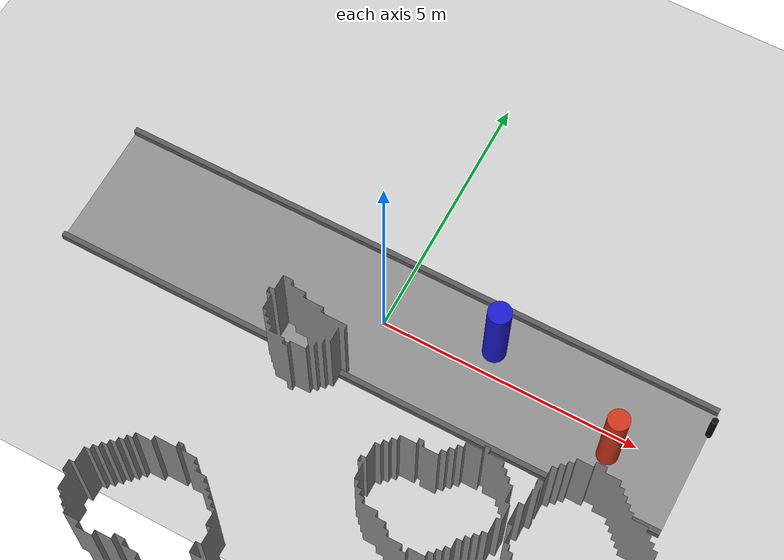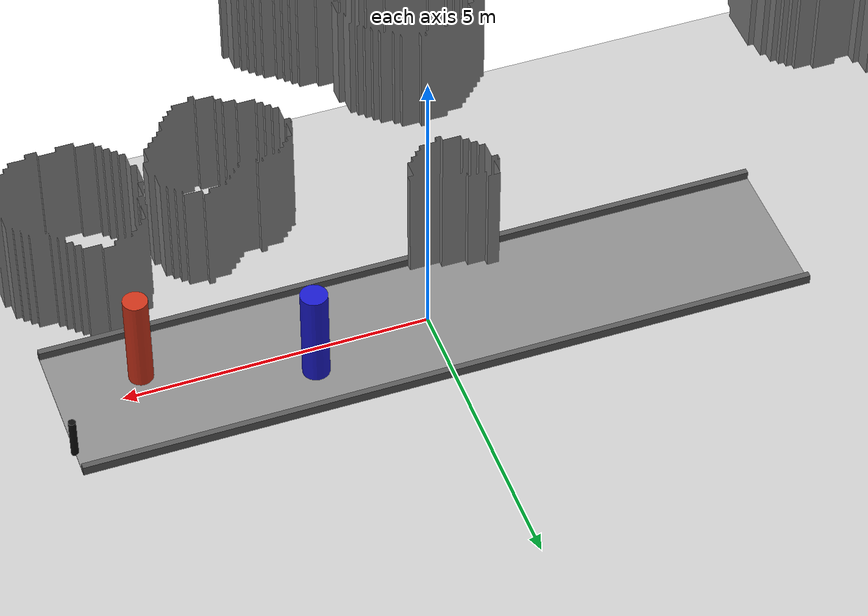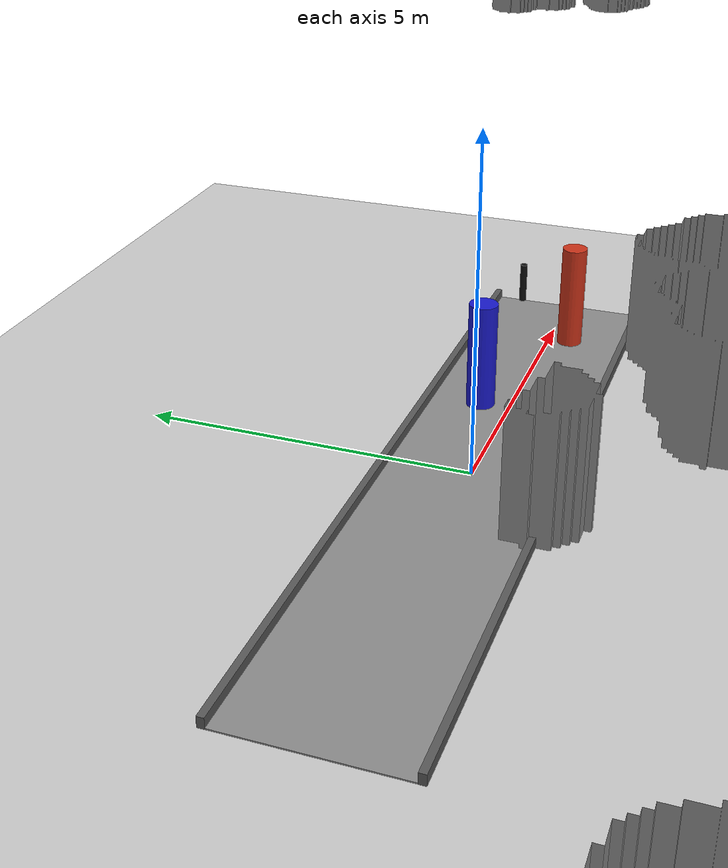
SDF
<?xml version="1.0"?>
<sdf version="1.6">
  <world name="sidewalk_obstacles">
    <include><uri>model://sun</uri></include>
    <include><uri>model://ground_plane</uri></include>
    <!-- PGM-derived scan-visible surface proves simulation map/route consistency only; it is not survey, hardware, or passenger evidence. -->
    <include><uri>model://hanyang_aegimun_occupancy_walls</uri></include>

    <model name="sidewalk_slab">
      <static>true</static>
      <pose>0 0 0.011 0 0 0</pose>
      <link name="link">
        <collision name="collision"><geometry><box><size>12 2.4 0.02</size></box></geometry></collision>
        <visual name="visual"><geometry><box><size>12 2.4 0.02</size></box></geometry><material><ambient>0.55 0.55 0.55 1</ambient></material></visual>
      </link>
    </model>

    <model name="curb_left">
      <static>true</static>
      <pose>0 1.25 0.08 0 0 0</pose>
      <link name="link">
        <collision name="collision"><geometry><box><size>12 0.10 0.16</size></box></geometry></collision>
        <visual name="visual"><geometry><box><size>12 0.10 0.16</size></box></geometry><material><ambient>0.35 0.35 0.35 1</ambient></material></visual>
      </link>
    </model>

    <model name="curb_right">
      <static>true</static>
      <pose>0 -1.25 0.08 0 0 0</pose>
      <link name="link">
        <collision name="collision"><geometry><box><size>12 0.10 0.16</size></box></geometry></collision>
        <visual name="visual"><geometry><box><size>12 0.10 0.16</size></box></geometry><material><ambient>0.35 0.35 0.35 1</ambient></material></visual>
      </link>
    </model>

    <model name="person_obstacle_1">
      <static>true</static>
      <pose>2.0 0.45 0.85 0 0 0</pose>
      <link name="body">
        <collision name="collision"><geometry><cylinder><radius>0.22</radius><length>1.70</length></cylinder></geometry></collision>
        <visual name="visual"><geometry><cylinder><radius>0.22</radius><length>1.70</length></cylinder></geometry><material><ambient>0.1 0.1 0.8 1</ambient></material></visual>
      </link>
    </model>

    <model name="person_obstacle_2">
      <static>true</static>
      <pose>4.6 -0.35 0.85 0 0 0</pose>
      <link name="body">
        <collision name="collision"><geometry><cylinder><radius>0.20</radius><length>1.70</length></cylinder></geometry></collision>
        <visual name="visual"><geometry><cylinder><radius>0.20</radius><length>1.70</length></cylinder></geometry><material><ambient>0.8 0.2 0.1 1</ambient></material></visual>
      </link>
    </model>

    <model name="bollard_row_1">
      <static>true</static>
      <pose>6.0 0.82 0.35 0 0 0</pose>
      <link name="post">
        <collision name="collision"><geometry><cylinder><radius>0.06</radius><length>0.70</length></cylinder></geometry></collision>
        <visual name="visual"><geometry><cylinder><radius>0.06</radius><length>0.70</length></cylinder></geometry><material><ambient>0.05 0.05 0.05 1</ambient></material></visual>
      </link>
    </model>

    <gui fullscreen="0">
      <camera name="user_camera">
        <pose>3.6 -4.4 3.0 0 0.58 1.15</pose>
        <view_controller>orbit</view_controller>
      </camera>
    </gui>

    <physics name="ode" type="ode">
      <max_step_size>0.001</max_step_size>
      <real_time_update_rate>1000</real_time_update_rate>
    </physics>
  </world>
</sdf>

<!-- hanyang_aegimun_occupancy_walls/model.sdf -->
<!-- Generated by scripts/generate_hanyang_gazebo_model.py; do not edit. -->
<!-- map_yaml_sha256=9f36ab2d3d35a667996570b45babb7cb3ba8bd1e706a971af22603da1220e7ff -->
<!-- map_pgm_sha256=c89d791f71fe3d1705ae04724acf8ff6ba0ccc351fc162fe996982f9469a0278 -->
<!-- dimensions=3220x2361 resolution=0.1 origin=[-60.1,-148.4,0] -->
<!-- occupied_value=0 free_value=254 unknown_value=205 source_occupied_points=16629 final_occupied_cells=210223 boundary_segments=32712 boundary_faces=65424 wall_height=2 -->
<sdf version="1.6">
  <model name="hanyang_aegimun_occupancy_walls">
    <static>true</static>
    <pose>0 0 0 0 0 0</pose>
    <link name="occupancy_walls">
      <pose>0 0 0 0 0 0</pose>
      <collision name="occupancy_walls_collision">
        <geometry><mesh><uri>model://hanyang_aegimun_occupancy_walls/meshes/occupancy_walls.obj</uri></mesh></geometry>
      </collision>
      <visual name="occupancy_walls_visual">
        <geometry><mesh><uri>model://hanyang_aegimun_occupancy_walls/meshes/occupancy_walls.obj</uri></mesh></geometry>
        <material><ambient>0.45 0.45 0.45 1</ambient><diffuse>0.55 0.55 0.55 1</diffuse></material>
      </visual>
    </link>
  </model>
</sdf>
